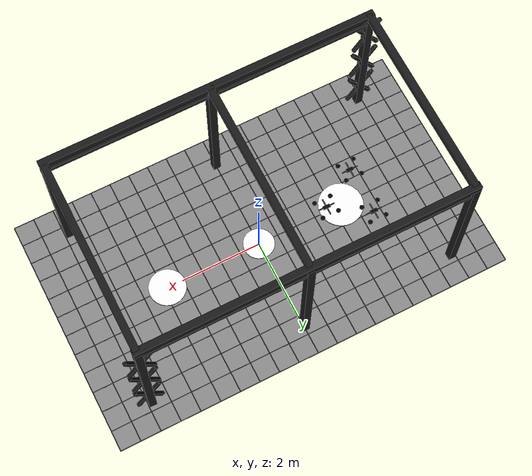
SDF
<?xml version="1.0" ?>
<sdf version="1.9">
  <world name="industrial_three_crazyflie_world">

    <physics name="1ms" type="ignored">
      <max_step_size>0.001</max_step_size>
      <real_time_factor>1.0</real_time_factor>
    </physics>

    <plugin filename="gz-sim-physics-system" name="gz::sim::systems::Physics"/>
    <plugin filename="gz-sim-user-commands-system" name="gz::sim::systems::UserCommands"/>
    <plugin filename="gz-sim-scene-broadcaster-system" name="gz::sim::systems::SceneBroadcaster"/>

    <scene>
      <ambient>0.62 0.62 0.62 1</ambient>
      <background>0.72 0.72 0.72 1</background>
      <shadows>true</shadows>
    </scene>

    <light type="directional" name="sun">
      <cast_shadows>true</cast_shadows>
      <pose>0 0 12 0 0 0</pose>
      <diffuse>0.85 0.85 0.85 1</diffuse>
      <specular>0.25 0.25 0.25 1</specular>
      <direction>-0.35 0.25 -0.9</direction>
    </light>

    <light type="point" name="soft_fill_light">
      <pose>0 0 6 0 0 0</pose>
      <diffuse>0.45 0.45 0.45 1</diffuse>
      <specular>0.05 0.05 0.05 1</specular>
      <attenuation>
        <range>18</range>
        <constant>0.8</constant>
        <linear>0.02</linear>
        <quadratic>0.001</quadratic>
      </attenuation>
    </light>

    <model name="large_tiled_floor">
      <static>true</static>
      <pose>0 0 0 0 0 0</pose>
      <link name="floor_link">
        <collision name="floor_collision">
          <geometry>
            <box>
              <size>10 6 0.04</size>
            </box>
          </geometry>
        </collision>
        <visual name="floor_visual">
          <geometry>
            <box>
              <size>10 6 0.04</size>
            </box>
          </geometry>
          <material>
            <ambient>0.50 0.50 0.50 1</ambient>
            <diffuse>0.55 0.55 0.55 1</diffuse>
            <specular>0.08 0.08 0.08 1</specular>
          </material>
        </visual>
      </link>
    </model>

    <model name="floor_grid_lines">
      <static>true</static>
      <pose>0 0 0.03 0 0 0</pose>
      <link name="grid_link">

        <visual name="xline_1">
          <pose>0 -3.0 0 0 0 0</pose>
          <geometry>
            <box>
              <size>10 0.015 0.004</size>
            </box>
          </geometry>

          <material>
            <ambient>0.34 0.34 0.34 1.0</ambient>
            <diffuse>0.34 0.34 0.34 1.0</diffuse>
            <specular>0.08 0.08 0.08 1</specular>
          </material>
        </visual>
        <visual name="xline_2">
          <pose>0 -2.5 0 0 0 0</pose>
          <geometry>
            <box>
              <size>10 0.015 0.004</size>
            </box>
          </geometry>

          <material>
            <ambient>0.34 0.34 0.34 1.0</ambient>
            <diffuse>0.34 0.34 0.34 1.0</diffuse>
            <specular>0.08 0.08 0.08 1</specular>
          </material>
        </visual>
        <visual name="xline_3">
          <pose>0 -2.0 0 0 0 0</pose>
          <geometry>
            <box>
              <size>10 0.015 0.004</size>
            </box>
          </geometry>

          <material>
            <ambient>0.34 0.34 0.34 1.0</ambient>
            <diffuse>0.34 0.34 0.34 1.0</diffuse>
            <specular>0.08 0.08 0.08 1</specular>
          </material>
        </visual>
        <visual name="xline_4">
          <pose>0 -1.5 0 0 0 0</pose>
          <geometry>
            <box>
              <size>10 0.015 0.004</size>
            </box>
          </geometry>

          <material>
            <ambient>0.34 0.34 0.34 1.0</ambient>
            <diffuse>0.34 0.34 0.34 1.0</diffuse>
            <specular>0.08 0.08 0.08 1</specular>
          </material>
        </visual>
        <visual name="xline_5">
          <pose>0 -1.0 0 0 0 0</pose>
          <geometry>
            <box>
              <size>10 0.015 0.004</size>
            </box>
          </geometry>

          <material>
            <ambient>0.34 0.34 0.34 1.0</ambient>
            <diffuse>0.34 0.34 0.34 1.0</diffuse>
            <specular>0.08 0.08 0.08 1</specular>
          </material>
        </visual>
        <visual name="xline_6">
          <pose>0 -0.5 0 0 0 0</pose>
          <geometry>
            <box>
              <size>10 0.015 0.004</size>
            </box>
          </geometry>

          <material>
            <ambient>0.34 0.34 0.34 1.0</ambient>
            <diffuse>0.34 0.34 0.34 1.0</diffuse>
            <specular>0.08 0.08 0.08 1</specular>
          </material>
        </visual>
        <visual name="xline_7">
          <pose>0 0.0 0 0 0 0</pose>
          <geometry>
            <box>
              <size>10 0.015 0.004</size>
            </box>
          </geometry>

          <material>
            <ambient>0.34 0.34 0.34 1.0</ambient>
            <diffuse>0.34 0.34 0.34 1.0</diffuse>
            <specular>0.08 0.08 0.08 1</specular>
          </material>
        </visual>
        <visual name="xline_8">
          <pose>0 0.5 0 0 0 0</pose>
          <geometry>
            <box>
              <size>10 0.015 0.004</size>
            </box>
          </geometry>

          <material>
            <ambient>0.34 0.34 0.34 1.0</ambient>
            <diffuse>0.34 0.34 0.34 1.0</diffuse>
            <specular>0.08 0.08 0.08 1</specular>
          </material>
        </visual>
        <visual name="xline_9">
          <pose>0 1.0 0 0 0 0</pose>
          <geometry>
            <box>
              <size>10 0.015 0.004</size>
            </box>
          </geometry>

          <material>
            <ambient>0.34 0.34 0.34 1.0</ambient>
            <diffuse>0.34 0.34 0.34 1.0</diffuse>
            <specular>0.08 0.08 0.08 1</specular>
          </material>
        </visual>
        <visual name="xline_10">
          <pose>0 1.5 0 0 0 0</pose>
          <geometry>
            <box>
              <size>10 0.015 0.004</size>
            </box>
          </geometry>

          <material>
            <ambient>0.34 0.34 0.34 1.0</ambient>
            <diffuse>0.34 0.34 0.34 1.0</diffuse>
            <specular>0.08 0.08 0.08 1</specular>
          </material>
        </visual>
        <visual name="xline_11">
          <pose>0 2.0 0 0 0 0</pose>
          <geometry>
            <box>
              <size>10 0.015 0.004</size>
            </box>
          </geometry>

          <material>
            <ambient>0.34 0.34 0.34 1.0</ambient>
            <diffuse>0.34 0.34 0.34 1.0</diffuse>
            <specular>0.08 0.08 0.08 1</specular>
          </material>
        </visual>
        <visual name="xline_12">
          <pose>0 2.5 0 0 0 0</pose>
          <geometry>
            <box>
              <size>10 0.015 0.004</size>
            </box>
          </geometry>

          <material>
            <ambient>0.34 0.34 0.34 1.0</ambient>
            <diffuse>0.34 0.34 0.34 1.0</diffuse>
            <specular>0.08 0.08 0.08 1</specular>
          </material>
        </visual>
        <visual name="xline_13">
          <pose>0 3.0 0 0 0 0</pose>
          <geometry>
            <box>
              <size>10 0.015 0.004</size>
            </box>
          </geometry>

          <material>
            <ambient>0.34 0.34 0.34 1.0</ambient>
            <diffuse>0.34 0.34 0.34 1.0</diffuse>
            <specular>0.08 0.08 0.08 1</specular>
          </material>
        </visual>
        <visual name="yline_1">
          <pose>-5.0 0 0 0 0 0</pose>
          <geometry>
            <box>
              <size>0.015 6 0.004</size>
            </box>
          </geometry>

          <material>
            <ambient>0.34 0.34 0.34 1.0</ambient>
            <diffuse>0.34 0.34 0.34 1.0</diffuse>
            <specular>0.08 0.08 0.08 1</specular>
          </material>
        </visual>
        <visual name="yline_2">
          <pose>-4.5 0 0 0 0 0</pose>
          <geometry>
            <box>
              <size>0.015 6 0.004</size>
            </box>
          </geometry>

          <material>
            <ambient>0.34 0.34 0.34 1.0</ambient>
            <diffuse>0.34 0.34 0.34 1.0</diffuse>
            <specular>0.08 0.08 0.08 1</specular>
          </material>
        </visual>
        <visual name="yline_3">
          <pose>-4.0 0 0 0 0 0</pose>
          <geometry>
            <box>
              <size>0.015 6 0.004</size>
            </box>
          </geometry>

          <material>
            <ambient>0.34 0.34 0.34 1.0</ambient>
            <diffuse>0.34 0.34 0.34 1.0</diffuse>
            <specular>0.08 0.08 0.08 1</specular>
          </material>
        </visual>
        <visual name="yline_4">
          <pose>-3.5 0 0 0 0 0</pose>
          <geometry>
            <box>
              <size>0.015 6 0.004</size>
            </box>
          </geometry>

          <material>
            <ambient>0.34 0.34 0.34 1.0</ambient>
            <diffuse>0.34 0.34 0.34 1.0</diffuse>
            <specular>0.08 0.08 0.08 1</specular>
          </material>
        </visual>
        <visual name="yline_5">
          <pose>-3.0 0 0 0 0 0</pose>
          <geometry>
            <box>
              <size>0.015 6 0.004</size>
            </box>
          </geometry>

          <material>
            <ambient>0.34 0.34 0.34 1.0</ambient>
            <diffuse>0.34 0.34 0.34 1.0</diffuse>
            <specular>0.08 0.08 0.08 1</specular>
          </material>
        </visual>
        <visual name="yline_6">
          <pose>-2.5 0 0 0 0 0</pose>
          <geometry>
            <box>
              <size>0.015 6 0.004</size>
            </box>
          </geometry>

          <material>
            <ambient>0.34 0.34 0.34 1.0</ambient>
            <diffuse>0.34 0.34 0.34 1.0</diffuse>
            <specular>0.08 0.08 0.08 1</specular>
          </material>
        </visual>
        <visual name="yline_7">
          <pose>-2.0 0 0 0 0 0</pose>
          <geometry>
            <box>
              <size>0.015 6 0.004</size>
            </box>
          </geometry>

          <material>
            <ambient>0.34 0.34 0.34 1.0</ambient>
            <diffuse>0.34 0.34 0.34 1.0</diffuse>
            <specular>0.08 0.08 0.08 1</specular>
          </material>
        </visual>
        <visual name="yline_8">
          <pose>-1.5 0 0 0 0 0</pose>
          <geometry>
            <box>
              <size>0.015 6 0.004</size>
            </box>
          </geometry>

          <material>
            <ambient>0.34 0.34 0.34 1.0</ambient>
            <diffuse>0.34 0.34 0.34 1.0</diffuse>
            <specular>0.08 0.08 0.08 1</specular>
          </material>
        </visual>
        <visual name="yline_9">
          <pose>-1.0 0 0 0 0 0</pose>
          <geometry>
            <box>
              <size>0.015 6 0.004</size>
            </box>
          </geometry>

          <material>
            <ambient>0.34 0.34 0.34 1.0</ambient>
            <diffuse>0.34 0.34 0.34 1.0</diffuse>
            <specular>0.08 0.08 0.08 1</specular>
          </material>
        </visual>
        <visual name="yline_10">
          <pose>-0.5 0 0 0 0 0</pose>
          <geometry>
            <box>
              <size>0.015 6 0.004</size>
            </box>
          </geometry>

          <material>
            <ambient>0.34 0.34 0.34 1.0</ambient>
            <diffuse>0.34 0.34 0.34 1.0</diffuse>
            <specular>0.08 0.08 0.08 1</specular>
          </material>
        </visual>
        <visual name="yline_11">
          <pose>0.0 0 0 0 0 0</pose>
          <geometry>
            <box>
              <size>0.015 6 0.004</size>
            </box>
          </geometry>

          <material>
            <ambient>0.34 0.34 0.34 1.0</ambient>
            <diffuse>0.34 0.34 0.34 1.0</diffuse>
            <specular>0.08 0.08 0.08 1</specular>
          </material>
        </visual>
        <visual name="yline_12">
          <pose>0.5 0 0 0 0 0</pose>
          <geometry>
            <box>
              <size>0.015 6 0.004</size>
            </box>
          </geometry>

          <material>
            <ambient>0.34 0.34 0.34 1.0</ambient>
            <diffuse>0.34 0.34 0.34 1.0</diffuse>
            <specular>0.08 0.08 0.08 1</specular>
          </material>
        </visual>
        <visual name="yline_13">
          <pose>1.0 0 0 0 0 0</pose>
          <geometry>
            <box>
              <size>0.015 6 0.004</size>
            </box>
          </geometry>

          <material>
            <ambient>0.34 0.34 0.34 1.0</ambient>
            <diffuse>0.34 0.34 0.34 1.0</diffuse>
            <specular>0.08 0.08 0.08 1</specular>
          </material>
        </visual>
        <visual name="yline_14">
          <pose>1.5 0 0 0 0 0</pose>
          <geometry>
            <box>
              <size>0.015 6 0.004</size>
            </box>
          </geometry>

          <material>
            <ambient>0.34 0.34 0.34 1.0</ambient>
            <diffuse>0.34 0.34 0.34 1.0</diffuse>
            <specular>0.08 0.08 0.08 1</specular>
          </material>
        </visual>
        <visual name="yline_15">
          <pose>2.0 0 0 0 0 0</pose>
          <geometry>
            <box>
              <size>0.015 6 0.004</size>
            </box>
          </geometry>

          <material>
            <ambient>0.34 0.34 0.34 1.0</ambient>
            <diffuse>0.34 0.34 0.34 1.0</diffuse>
            <specular>0.08 0.08 0.08 1</specular>
          </material>
        </visual>
        <visual name="yline_16">
          <pose>2.5 0 0 0 0 0</pose>
          <geometry>
            <box>
              <size>0.015 6 0.004</size>
            </box>
          </geometry>

          <material>
            <ambient>0.34 0.34 0.34 1.0</ambient>
            <diffuse>0.34 0.34 0.34 1.0</diffuse>
            <specular>0.08 0.08 0.08 1</specular>
          </material>
        </visual>
        <visual name="yline_17">
          <pose>3.0 0 0 0 0 0</pose>
          <geometry>
            <box>
              <size>0.015 6 0.004</size>
            </box>
          </geometry>

          <material>
            <ambient>0.34 0.34 0.34 1.0</ambient>
            <diffuse>0.34 0.34 0.34 1.0</diffuse>
            <specular>0.08 0.08 0.08 1</specular>
          </material>
        </visual>
        <visual name="yline_18">
          <pose>3.5 0 0 0 0 0</pose>
          <geometry>
            <box>
              <size>0.015 6 0.004</size>
            </box>
          </geometry>

          <material>
            <ambient>0.34 0.34 0.34 1.0</ambient>
            <diffuse>0.34 0.34 0.34 1.0</diffuse>
            <specular>0.08 0.08 0.08 1</specular>
          </material>
        </visual>
        <visual name="yline_19">
          <pose>4.0 0 0 0 0 0</pose>
          <geometry>
            <box>
              <size>0.015 6 0.004</size>
            </box>
          </geometry>

          <material>
            <ambient>0.34 0.34 0.34 1.0</ambient>
            <diffuse>0.34 0.34 0.34 1.0</diffuse>
            <specular>0.08 0.08 0.08 1</specular>
          </material>
        </visual>
        <visual name="yline_20">
          <pose>4.5 0 0 0 0 0</pose>
          <geometry>
            <box>
              <size>0.015 6 0.004</size>
            </box>
          </geometry>

          <material>
            <ambient>0.34 0.34 0.34 1.0</ambient>
            <diffuse>0.34 0.34 0.34 1.0</diffuse>
            <specular>0.08 0.08 0.08 1</specular>
          </material>
        </visual>
        <visual name="yline_21">
          <pose>5.0 0 0 0 0 0</pose>
          <geometry>
            <box>
              <size>0.015 6 0.004</size>
            </box>
          </geometry>

          <material>
            <ambient>0.34 0.34 0.34 1.0</ambient>
            <diffuse>0.34 0.34 0.34 1.0</diffuse>
            <specular>0.08 0.08 0.08 1</specular>
          </material>
        </visual>
      </link>
    </model>

    <model name="landing_pad_start">
      <static>true</static>
      <pose>-2.2 0 0.055 0 0 0</pose>
      <link name="pad_link">
        <visual name="pad_visual">
          <geometry>
            <cylinder>
              <radius>0.55</radius>
              <length>0.025</length>
            </cylinder>
          </geometry>
          <material>
            <ambient>1 1 1 1</ambient>
            <diffuse>1 1 1 1</diffuse>
            <specular>0.2 0.2 0.2 1</specular>
          </material>
        </visual>
      </link>
    </model>

    <model name="landing_pad_mid">
      <static>true</static>
      <pose>0 0 0.055 0 0 0</pose>
      <link name="pad_link">
        <visual name="pad_visual">
          <geometry>
            <cylinder>
              <radius>0.38</radius>
              <length>0.025</length>
            </cylinder>
          </geometry>
          <material>
            <ambient>1 1 1 1</ambient>
            <diffuse>1 1 1 1</diffuse>
            <specular>0.2 0.2 0.2 1</specular>
          </material>
        </visual>
      </link>
    </model>

    <model name="landing_pad_goal">
      <static>true</static>
      <pose>2.4 0 0.055 0 0 0</pose>
      <link name="pad_link">
        <visual name="pad_visual">
          <geometry>
            <cylinder>
              <radius>0.45</radius>
              <length>0.025</length>
            </cylinder>
          </geometry>
          <material>
            <ambient>1 1 1 1</ambient>
            <diffuse>1 1 1 1</diffuse>
            <specular>0.2 0.2 0.2 1</specular>
          </material>
        </visual>
      </link>
    </model>

    <model name="industrial_truss_platform">
      <static>true</static>
      <pose>0 0 0 0 0 0</pose>
      <link name="truss_link">

        <visual name="pillar_1">
          <pose>-3.9 -2.3 2.0 0 0 0</pose>
          <geometry>
            <box>
              <size>0.18 0.18 4.0</size>
            </box>
          </geometry>

          <material>
            <ambient>0.1 0.1 0.1 1.0</ambient>
            <diffuse>0.1 0.1 0.1 1.0</diffuse>
            <specular>0.08 0.08 0.08 1</specular>
          </material>
        </visual>
        <collision name="pillar_collision_1">
          <pose>-3.9 -2.3 2.0 0 0 0</pose>
          <geometry>
            <box>
              <size>0.18 0.18 4.0</size>
            </box>
          </geometry>
        </collision>
        <visual name="pillar_2">
          <pose>-3.9 2.3 2.0 0 0 0</pose>
          <geometry>
            <box>
              <size>0.18 0.18 4.0</size>
            </box>
          </geometry>

          <material>
            <ambient>0.1 0.1 0.1 1.0</ambient>
            <diffuse>0.1 0.1 0.1 1.0</diffuse>
            <specular>0.08 0.08 0.08 1</specular>
          </material>
        </visual>
        <collision name="pillar_collision_2">
          <pose>-3.9 2.3 2.0 0 0 0</pose>
          <geometry>
            <box>
              <size>0.18 0.18 4.0</size>
            </box>
          </geometry>
        </collision>
        <visual name="pillar_3">
          <pose>0.0 -2.3 2.0 0 0 0</pose>
          <geometry>
            <box>
              <size>0.18 0.18 4.0</size>
            </box>
          </geometry>

          <material>
            <ambient>0.1 0.1 0.1 1.0</ambient>
            <diffuse>0.1 0.1 0.1 1.0</diffuse>
            <specular>0.08 0.08 0.08 1</specular>
          </material>
        </visual>
        <collision name="pillar_collision_3">
          <pose>0.0 -2.3 2.0 0 0 0</pose>
          <geometry>
            <box>
              <size>0.18 0.18 4.0</size>
            </box>
          </geometry>
        </collision>
        <visual name="pillar_4">
          <pose>0.0 2.3 2.0 0 0 0</pose>
          <geometry>
            <box>
              <size>0.18 0.18 4.0</size>
            </box>
          </geometry>

          <material>
            <ambient>0.1 0.1 0.1 1.0</ambient>
            <diffuse>0.1 0.1 0.1 1.0</diffuse>
            <specular>0.08 0.08 0.08 1</specular>
          </material>
        </visual>
        <collision name="pillar_collision_4">
          <pose>0.0 2.3 2.0 0 0 0</pose>
          <geometry>
            <box>
              <size>0.18 0.18 4.0</size>
            </box>
          </geometry>
        </collision>
        <visual name="pillar_5">
          <pose>3.9 -2.3 2.0 0 0 0</pose>
          <geometry>
            <box>
              <size>0.18 0.18 4.0</size>
            </box>
          </geometry>

          <material>
            <ambient>0.1 0.1 0.1 1.0</ambient>
            <diffuse>0.1 0.1 0.1 1.0</diffuse>
            <specular>0.08 0.08 0.08 1</specular>
          </material>
        </visual>
        <collision name="pillar_collision_5">
          <pose>3.9 -2.3 2.0 0 0 0</pose>
          <geometry>
            <box>
              <size>0.18 0.18 4.0</size>
            </box>
          </geometry>
        </collision>
        <visual name="pillar_6">
          <pose>3.9 2.3 2.0 0 0 0</pose>
          <geometry>
            <box>
              <size>0.18 0.18 4.0</size>
            </box>
          </geometry>

          <material>
            <ambient>0.1 0.1 0.1 1.0</ambient>
            <diffuse>0.1 0.1 0.1 1.0</diffuse>
            <specular>0.08 0.08 0.08 1</specular>
          </material>
        </visual>
        <collision name="pillar_collision_6">
          <pose>3.9 2.3 2.0 0 0 0</pose>
          <geometry>
            <box>
              <size>0.18 0.18 4.0</size>
            </box>
          </geometry>
        </collision>
        <visual name="top_beam_left">
          <pose>0 -2.3 4.05 0 0 0</pose>
          <geometry>
            <box>
              <size>8.0 0.16 0.16</size>
            </box>
          </geometry>

          <material>
            <ambient>0.1 0.1 0.1 1.0</ambient>
            <diffuse>0.1 0.1 0.1 1.0</diffuse>
            <specular>0.08 0.08 0.08 1</specular>
          </material>
        </visual>
        <visual name="top_beam_right">
          <pose>0 2.3 4.05 0 0 0</pose>
          <geometry>
            <box>
              <size>8.0 0.16 0.16</size>
            </box>
          </geometry>

          <material>
            <ambient>0.1 0.1 0.1 1.0</ambient>
            <diffuse>0.1 0.1 0.1 1.0</diffuse>
            <specular>0.08 0.08 0.08 1</specular>
          </material>
        </visual>
        <visual name="top_beam_front">
          <pose>-3.9 0 4.05 0 0 1.5708</pose>
          <geometry>
            <box>
              <size>4.6 0.16 0.16</size>
            </box>
          </geometry>

          <material>
            <ambient>0.1 0.1 0.1 1.0</ambient>
            <diffuse>0.1 0.1 0.1 1.0</diffuse>
            <specular>0.08 0.08 0.08 1</specular>
          </material>
        </visual>
        <visual name="top_beam_mid">
          <pose>0 0 4.05 0 0 1.5708</pose>
          <geometry>
            <box>
              <size>4.6 0.16 0.16</size>
            </box>
          </geometry>

          <material>
            <ambient>0.1 0.1 0.1 1.0</ambient>
            <diffuse>0.1 0.1 0.1 1.0</diffuse>
            <specular>0.08 0.08 0.08 1</specular>
          </material>
        </visual>
        <visual name="top_beam_back">
          <pose>3.9 0 4.05 0 0 1.5708</pose>
          <geometry>
            <box>
              <size>4.6 0.16 0.16</size>
            </box>
          </geometry>

          <material>
            <ambient>0.1 0.1 0.1 1.0</ambient>
            <diffuse>0.1 0.1 0.1 1.0</diffuse>
            <specular>0.08 0.08 0.08 1</specular>
          </material>
        </visual>
        <visual name="lower_beam_left">
          <pose>0 -2.3 3.72 0 0 0</pose>
          <geometry>
            <box>
              <size>8.0 0.10 0.10</size>
            </box>
          </geometry>

          <material>
            <ambient>0.1 0.1 0.1 1.0</ambient>
            <diffuse>0.1 0.1 0.1 1.0</diffuse>
            <specular>0.08 0.08 0.08 1</specular>
          </material>
        </visual>
        <visual name="lower_beam_right">
          <pose>0 2.3 3.72 0 0 0</pose>
          <geometry>
            <box>
              <size>8.0 0.10 0.10</size>
            </box>
          </geometry>

          <material>
            <ambient>0.1 0.1 0.1 1.0</ambient>
            <diffuse>0.1 0.1 0.1 1.0</diffuse>
            <specular>0.08 0.08 0.08 1</specular>
          </material>
        </visual>
        <visual name="brace_1">
          <pose>-3.9 -2.3 0.8 0 0.55 0</pose>
          <geometry>
            <box>
              <size>0.08 0.08 1.15</size>
            </box>
          </geometry>

          <material>
            <ambient>0.08 0.08 0.08 1.0</ambient>
            <diffuse>0.08 0.08 0.08 1.0</diffuse>
            <specular>0.08 0.08 0.08 1</specular>
          </material>
        </visual>
        <visual name="brace_2">
          <pose>-3.9 -2.3 0.8 0 -0.55 0</pose>
          <geometry>
            <box>
              <size>0.08 0.08 1.15</size>
            </box>
          </geometry>

          <material>
            <ambient>0.08 0.08 0.08 1.0</ambient>
            <diffuse>0.08 0.08 0.08 1.0</diffuse>
            <specular>0.08 0.08 0.08 1</specular>
          </material>
        </visual>
        <visual name="brace_3">
          <pose>-3.9 -2.3 2.0 0 0.55 0</pose>
          <geometry>
            <box>
              <size>0.08 0.08 1.15</size>
            </box>
          </geometry>

          <material>
            <ambient>0.08 0.08 0.08 1.0</ambient>
            <diffuse>0.08 0.08 0.08 1.0</diffuse>
            <specular>0.08 0.08 0.08 1</specular>
          </material>
        </visual>
        <visual name="brace_4">
          <pose>-3.9 -2.3 2.0 0 -0.55 0</pose>
          <geometry>
            <box>
              <size>0.08 0.08 1.15</size>
            </box>
          </geometry>

          <material>
            <ambient>0.08 0.08 0.08 1.0</ambient>
            <diffuse>0.08 0.08 0.08 1.0</diffuse>
            <specular>0.08 0.08 0.08 1</specular>
          </material>
        </visual>
        <visual name="brace_5">
          <pose>-3.9 -2.3 3.2 0 0.55 0</pose>
          <geometry>
            <box>
              <size>0.08 0.08 1.15</size>
            </box>
          </geometry>

          <material>
            <ambient>0.08 0.08 0.08 1.0</ambient>
            <diffuse>0.08 0.08 0.08 1.0</diffuse>
            <specular>0.08 0.08 0.08 1</specular>
          </material>
        </visual>
        <visual name="brace_6">
          <pose>-3.9 -2.3 3.2 0 -0.55 0</pose>
          <geometry>
            <box>
              <size>0.08 0.08 1.15</size>
            </box>
          </geometry>

          <material>
            <ambient>0.08 0.08 0.08 1.0</ambient>
            <diffuse>0.08 0.08 0.08 1.0</diffuse>
            <specular>0.08 0.08 0.08 1</specular>
          </material>
        </visual>
        <visual name="brace_7">
          <pose>3.9 2.3 0.8 0 0.55 0</pose>
          <geometry>
            <box>
              <size>0.08 0.08 1.15</size>
            </box>
          </geometry>

          <material>
            <ambient>0.08 0.08 0.08 1.0</ambient>
            <diffuse>0.08 0.08 0.08 1.0</diffuse>
            <specular>0.08 0.08 0.08 1</specular>
          </material>
        </visual>
        <visual name="brace_8">
          <pose>3.9 2.3 0.8 0 -0.55 0</pose>
          <geometry>
            <box>
              <size>0.08 0.08 1.15</size>
            </box>
          </geometry>

          <material>
            <ambient>0.08 0.08 0.08 1.0</ambient>
            <diffuse>0.08 0.08 0.08 1.0</diffuse>
            <specular>0.08 0.08 0.08 1</specular>
          </material>
        </visual>
        <visual name="brace_9">
          <pose>3.9 2.3 2.0 0 0.55 0</pose>
          <geometry>
            <box>
              <size>0.08 0.08 1.15</size>
            </box>
          </geometry>

          <material>
            <ambient>0.08 0.08 0.08 1.0</ambient>
            <diffuse>0.08 0.08 0.08 1.0</diffuse>
            <specular>0.08 0.08 0.08 1</specular>
          </material>
        </visual>
        <visual name="brace_10">
          <pose>3.9 2.3 2.0 0 -0.55 0</pose>
          <geometry>
            <box>
              <size>0.08 0.08 1.15</size>
            </box>
          </geometry>

          <material>
            <ambient>0.08 0.08 0.08 1.0</ambient>
            <diffuse>0.08 0.08 0.08 1.0</diffuse>
            <specular>0.08 0.08 0.08 1</specular>
          </material>
        </visual>
        <visual name="brace_11">
          <pose>3.9 2.3 3.2 0 0.55 0</pose>
          <geometry>
            <box>
              <size>0.08 0.08 1.15</size>
            </box>
          </geometry>

          <material>
            <ambient>0.08 0.08 0.08 1.0</ambient>
            <diffuse>0.08 0.08 0.08 1.0</diffuse>
            <specular>0.08 0.08 0.08 1</specular>
          </material>
        </visual>
        <visual name="brace_12">
          <pose>3.9 2.3 3.2 0 -0.55 0</pose>
          <geometry>
            <box>
              <size>0.08 0.08 1.15</size>
            </box>
          </geometry>

          <material>
            <ambient>0.08 0.08 0.08 1.0</ambient>
            <diffuse>0.08 0.08 0.08 1.0</diffuse>
            <specular>0.08 0.08 0.08 1</specular>
          </material>
        </visual>
      </link>
    </model>

    <model name="uav1">
      <static>false</static>
      <pose>-1.80 0.00 0.35 0 0 0</pose>
      <link name="base_link">
        <inertial>
          <mass>0.05</mass>
          <inertia>
            <ixx>0.0001</ixx>
            <iyy>0.0001</iyy>
            <izz>0.0001</izz>
          </inertia>
        </inertial>

        <visual name="body">
          <pose>0 0 0 0 0 0</pose>
          <geometry>
            <box>
              <size>0.18 0.08 0.04</size>
            </box>
          </geometry>

          <material>
            <ambient>0.02 0.02 0.02 1.0</ambient>
            <diffuse>0.02 0.02 0.02 1.0</diffuse>
            <specular>0.08 0.08 0.08 1</specular>
          </material>
        </visual>

        <visual name="arm_x">
          <pose>0 0 0 0 0 0</pose>
          <geometry>
            <box>
              <size>0.42 0.025 0.025</size>
            </box>
          </geometry>

          <material>
            <ambient>0.02 0.02 0.02 1.0</ambient>
            <diffuse>0.02 0.02 0.02 1.0</diffuse>
            <specular>0.08 0.08 0.08 1</specular>
          </material>
        </visual>

        <visual name="arm_y">
          <pose>0 0 0 0 0 0</pose>
          <geometry>
            <box>
              <size>0.025 0.42 0.025</size>
            </box>
          </geometry>

          <material>
            <ambient>0.02 0.02 0.02 1.0</ambient>
            <diffuse>0.02 0.02 0.02 1.0</diffuse>
            <specular>0.08 0.08 0.08 1</specular>
          </material>
        </visual>

        <visual name="rotor_1">
          <pose>0.21 0.21 0 0 0 0</pose>
          <geometry>
            <cylinder>
              <radius>0.055</radius>
              <length>0.01</length>
            </cylinder>
          </geometry>

          <material>
            <ambient>0.01 0.01 0.01 1.0</ambient>
            <diffuse>0.01 0.01 0.01 1.0</diffuse>
            <specular>0.08 0.08 0.08 1</specular>
          </material>
        </visual>

        <visual name="rotor_2">
          <pose>0.21 -0.21 0 0 0 0</pose>
          <geometry>
            <cylinder>
              <radius>0.055</radius>
              <length>0.01</length>
            </cylinder>
          </geometry>

          <material>
            <ambient>0.01 0.01 0.01 1.0</ambient>
            <diffuse>0.01 0.01 0.01 1.0</diffuse>
            <specular>0.08 0.08 0.08 1</specular>
          </material>
        </visual>

        <visual name="rotor_3">
          <pose>-0.21 0.21 0 0 0 0</pose>
          <geometry>
            <cylinder>
              <radius>0.055</radius>
              <length>0.01</length>
            </cylinder>
          </geometry>

          <material>
            <ambient>0.01 0.01 0.01 1.0</ambient>
            <diffuse>0.01 0.01 0.01 1.0</diffuse>
            <specular>0.08 0.08 0.08 1</specular>
          </material>
        </visual>

        <visual name="rotor_4">
          <pose>-0.21 -0.21 0 0 0 0</pose>
          <geometry>
            <cylinder>
              <radius>0.055</radius>
              <length>0.01</length>
            </cylinder>
          </geometry>

          <material>
            <ambient>0.01 0.01 0.01 1.0</ambient>
            <diffuse>0.01 0.01 0.01 1.0</diffuse>
            <specular>0.08 0.08 0.08 1</specular>
          </material>
        </visual>

        <collision name="collision">
          <geometry>
            <box>
              <size>0.20 0.20 0.06</size>
            </box>
          </geometry>
        </collision>
      </link>
    </model>

    <model name="uav2">
      <static>false</static>
      <pose>-2.75 0.60 0.35 0 0 0</pose>
      <link name="base_link">
        <inertial>
          <mass>0.05</mass>
          <inertia>
            <ixx>0.0001</ixx>
            <iyy>0.0001</iyy>
            <izz>0.0001</izz>
          </inertia>
        </inertial>

        <visual name="body">
          <pose>0 0 0 0 0 0</pose>
          <geometry>
            <box>
              <size>0.18 0.08 0.04</size>
            </box>
          </geometry>

          <material>
            <ambient>0.02 0.02 0.02 1.0</ambient>
            <diffuse>0.02 0.02 0.02 1.0</diffuse>
            <specular>0.08 0.08 0.08 1</specular>
          </material>
        </visual>

        <visual name="arm_x">
          <pose>0 0 0 0 0 0</pose>
          <geometry>
            <box>
              <size>0.42 0.025 0.025</size>
            </box>
          </geometry>

          <material>
            <ambient>0.02 0.02 0.02 1.0</ambient>
            <diffuse>0.02 0.02 0.02 1.0</diffuse>
            <specular>0.08 0.08 0.08 1</specular>
          </material>
        </visual>

        <visual name="arm_y">
          <pose>0 0 0 0 0 0</pose>
          <geometry>
            <box>
              <size>0.025 0.42 0.025</size>
            </box>
          </geometry>

          <material>
            <ambient>0.02 0.02 0.02 1.0</ambient>
            <diffuse>0.02 0.02 0.02 1.0</diffuse>
            <specular>0.08 0.08 0.08 1</specular>
          </material>
        </visual>

        <visual name="rotor_1">
          <pose>0.21 0.21 0 0 0 0</pose>
          <geometry>
            <cylinder>
              <radius>0.055</radius>
              <length>0.01</length>
            </cylinder>
          </geometry>

          <material>
            <ambient>0.01 0.01 0.01 1.0</ambient>
            <diffuse>0.01 0.01 0.01 1.0</diffuse>
            <specular>0.08 0.08 0.08 1</specular>
          </material>
        </visual>

        <visual name="rotor_2">
          <pose>0.21 -0.21 0 0 0 0</pose>
          <geometry>
            <cylinder>
              <radius>0.055</radius>
              <length>0.01</length>
            </cylinder>
          </geometry>

          <material>
            <ambient>0.01 0.01 0.01 1.0</ambient>
            <diffuse>0.01 0.01 0.01 1.0</diffuse>
            <specular>0.08 0.08 0.08 1</specular>
          </material>
        </visual>

        <visual name="rotor_3">
          <pose>-0.21 0.21 0 0 0 0</pose>
          <geometry>
            <cylinder>
              <radius>0.055</radius>
              <length>0.01</length>
            </cylinder>
          </geometry>

          <material>
            <ambient>0.01 0.01 0.01 1.0</ambient>
            <diffuse>0.01 0.01 0.01 1.0</diffuse>
            <specular>0.08 0.08 0.08 1</specular>
          </material>
        </visual>

        <visual name="rotor_4">
          <pose>-0.21 -0.21 0 0 0 0</pose>
          <geometry>
            <cylinder>
              <radius>0.055</radius>
              <length>0.01</length>
            </cylinder>
          </geometry>

          <material>
            <ambient>0.01 0.01 0.01 1.0</ambient>
            <diffuse>0.01 0.01 0.01 1.0</diffuse>
            <specular>0.08 0.08 0.08 1</specular>
          </material>
        </visual>

        <collision name="collision">
          <geometry>
            <box>
              <size>0.20 0.20 0.06</size>
            </box>
          </geometry>
        </collision>
      </link>
    </model>

    <model name="uav3">
      <static>false</static>
      <pose>-2.75 -0.60 0.35 0 0 0</pose>
      <link name="base_link">
        <inertial>
          <mass>0.05</mass>
          <inertia>
            <ixx>0.0001</ixx>
            <iyy>0.0001</iyy>
            <izz>0.0001</izz>
          </inertia>
        </inertial>

        <visual name="body">
          <pose>0 0 0 0 0 0</pose>
          <geometry>
            <box>
              <size>0.18 0.08 0.04</size>
            </box>
          </geometry>

          <material>
            <ambient>0.02 0.02 0.02 1.0</ambient>
            <diffuse>0.02 0.02 0.02 1.0</diffuse>
            <specular>0.08 0.08 0.08 1</specular>
          </material>
        </visual>

        <visual name="arm_x">
          <pose>0 0 0 0 0 0</pose>
          <geometry>
            <box>
              <size>0.42 0.025 0.025</size>
            </box>
          </geometry>

          <material>
            <ambient>0.02 0.02 0.02 1.0</ambient>
            <diffuse>0.02 0.02 0.02 1.0</diffuse>
            <specular>0.08 0.08 0.08 1</specular>
          </material>
        </visual>

        <visual name="arm_y">
          <pose>0 0 0 0 0 0</pose>
          <geometry>
            <box>
              <size>0.025 0.42 0.025</size>
            </box>
          </geometry>

          <material>
            <ambient>0.02 0.02 0.02 1.0</ambient>
            <diffuse>0.02 0.02 0.02 1.0</diffuse>
            <specular>0.08 0.08 0.08 1</specular>
          </material>
        </visual>

        <visual name="rotor_1">
          <pose>0.21 0.21 0 0 0 0</pose>
          <geometry>
            <cylinder>
              <radius>0.055</radius>
              <length>0.01</length>
            </cylinder>
          </geometry>

          <material>
            <ambient>0.01 0.01 0.01 1.0</ambient>
            <diffuse>0.01 0.01 0.01 1.0</diffuse>
            <specular>0.08 0.08 0.08 1</specular>
          </material>
        </visual>

        <visual name="rotor_2">
          <pose>0.21 -0.21 0 0 0 0</pose>
          <geometry>
            <cylinder>
              <radius>0.055</radius>
              <length>0.01</length>
            </cylinder>
          </geometry>

          <material>
            <ambient>0.01 0.01 0.01 1.0</ambient>
            <diffuse>0.01 0.01 0.01 1.0</diffuse>
            <specular>0.08 0.08 0.08 1</specular>
          </material>
        </visual>

        <visual name="rotor_3">
          <pose>-0.21 0.21 0 0 0 0</pose>
          <geometry>
            <cylinder>
              <radius>0.055</radius>
              <length>0.01</length>
            </cylinder>
          </geometry>

          <material>
            <ambient>0.01 0.01 0.01 1.0</ambient>
            <diffuse>0.01 0.01 0.01 1.0</diffuse>
            <specular>0.08 0.08 0.08 1</specular>
          </material>
        </visual>

        <visual name="rotor_4">
          <pose>-0.21 -0.21 0 0 0 0</pose>
          <geometry>
            <cylinder>
              <radius>0.055</radius>
              <length>0.01</length>
            </cylinder>
          </geometry>

          <material>
            <ambient>0.01 0.01 0.01 1.0</ambient>
            <diffuse>0.01 0.01 0.01 1.0</diffuse>
            <specular>0.08 0.08 0.08 1</specular>
          </material>
        </visual>

        <collision name="collision">
          <geometry>
            <box>
              <size>0.20 0.20 0.06</size>
            </box>
          </geometry>
        </collision>
      </link>
    </model>

    <gui fullscreen="0">
      <camera name="industrial_arena_camera">
        <pose>-4.2 -3.6 2.2 0 0.34 0.73</pose>
        <view_controller>orbit</view_controller>
        <projection_type>perspective</projection_type>
      </camera>
    </gui>

  </world>
</sdf>
